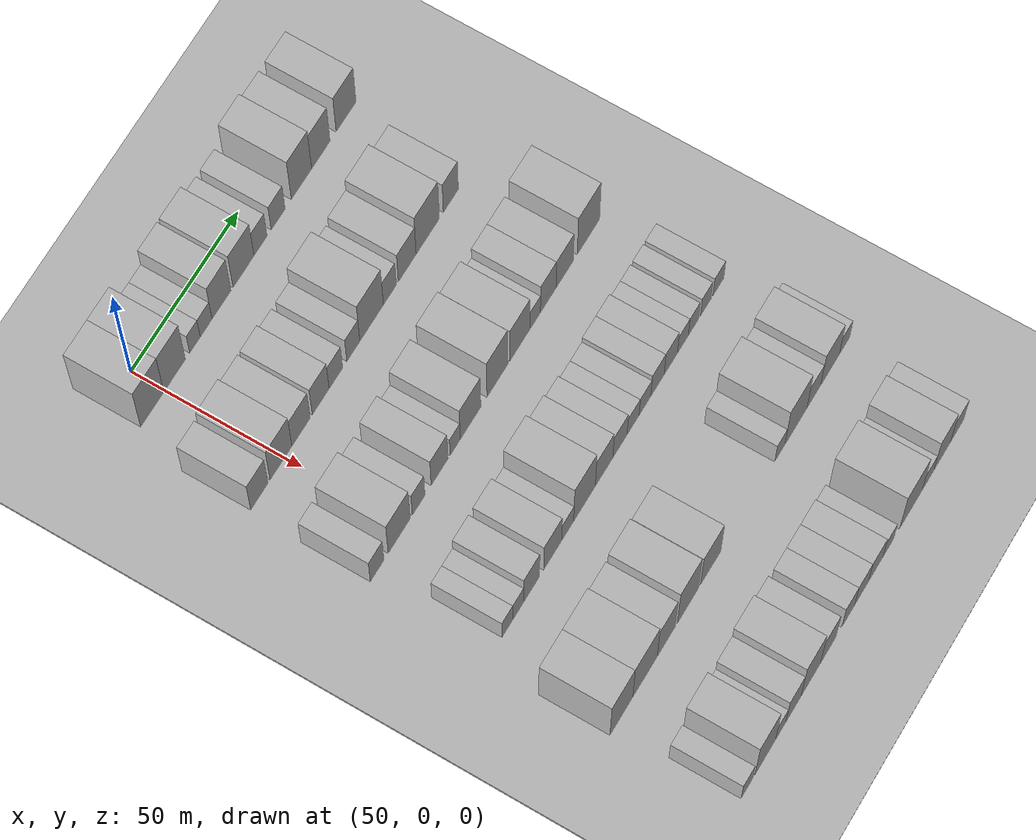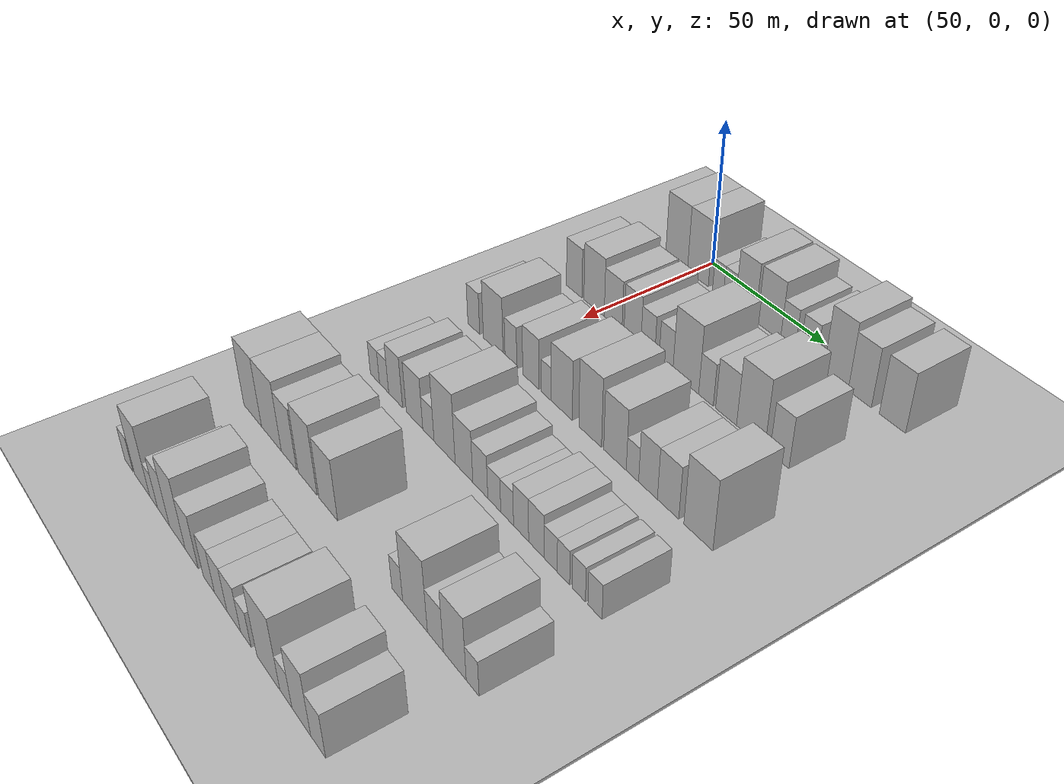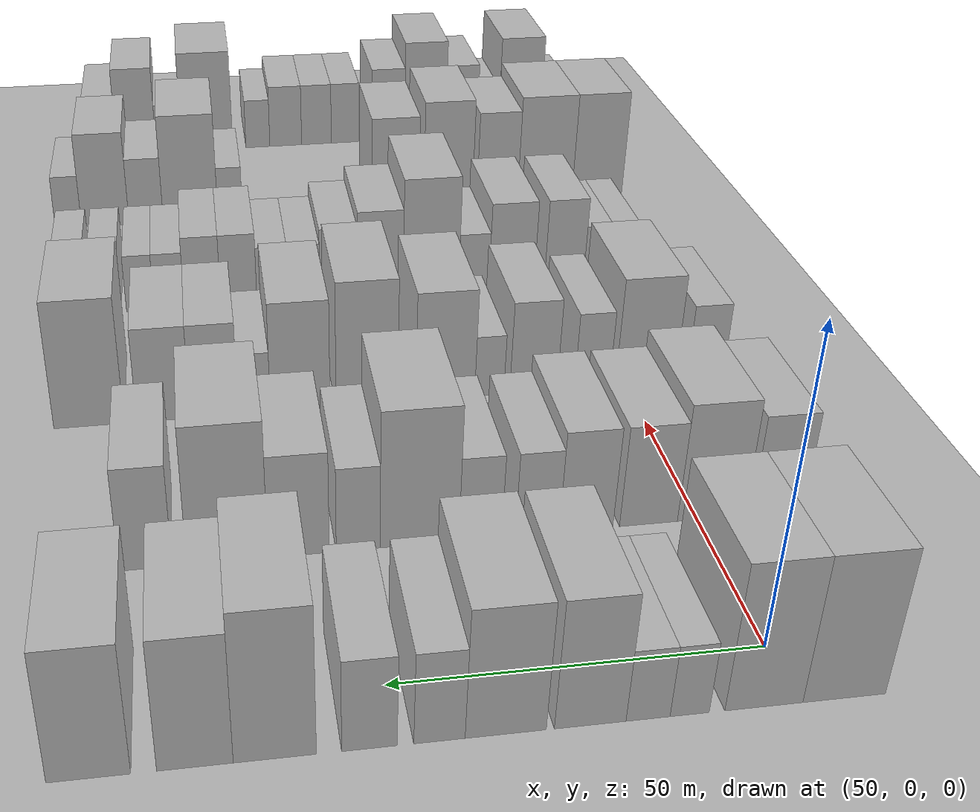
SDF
<sdf version="1.6">
 <world name="default">
  <include><name>ground_plane_1</name><uri>model://HANNAS_ground_plane</uri></include>
  <include>
   <name>ground_plane_2</name>
   <uri>model://HANNAS_ground_plane</uri>
   <pose>100 0 0  0 0 0</pose>
  </include>
  <model name="building_65">
   <static>1</static>
   <pose>50.0000 -6.0727 0 0.000000 0.000000 0.000000</pose>
   <link name="link">
    <pose>0 0 12.00 0 0 0</pose>
    <collision name="collision"><geometry><box><size>20.0000 10.7678 24.0000</size></box></geometry></collision>
    <visual name="visual">
     <cast_shadows>0</cast_shadows>
     <geometry><box><size>20.0000 10.7678 24.0000</size></box></geometry>
     <material>
      <script>
       <uri>model://HANNAS_wall/materials/scripts</uri>
       <uri>model://HANNAS_wall/materials/textures</uri>
       <name>vrc/HANNAS_wall</name>
      </script>
     </material>
    </visual>
   </link>
  </model>
  <model name="building_66">
   <static>1</static>
   <pose>50.0000 4.3286 0 0.000000 0.000000 0.000000</pose>
   <link name="link">
    <pose>0 0 12.00 0 0 0</pose>
    <collision name="collision"><geometry><box><size>20.0000 10.0348 24.0000</size></box></geometry></collision>
    <visual name="visual">
     <cast_shadows>0</cast_shadows>
     <geometry><box><size>20.0000 10.0348 24.0000</size></box></geometry>
     <material>
      <script>
       <uri>model://HANNAS_wall/materials/scripts</uri>
       <uri>model://HANNAS_wall/materials/textures</uri>
       <name>vrc/HANNAS_wall</name>
      </script>
     </material>
    </visual>
   </link>
  </model>
  <model name="building_67">
   <static>1</static>
   <pose>50.0000 13.8316 0 0.000000 0.000000 0.000000</pose>
   <link name="link">
    <pose>0 0 6.00 0 0 0</pose>
    <collision name="collision"><geometry><box><size>20.0000 4.9713 12.0000</size></box></geometry></collision>
    <visual name="visual">
     <cast_shadows>0</cast_shadows>
     <geometry><box><size>20.0000 4.9713 12.0000</size></box></geometry>
     <material>
      <script>
       <uri>model://HANNAS_wall/materials/scripts</uri>
       <uri>model://HANNAS_wall/materials/textures</uri>
       <name>vrc/HANNAS_wall</name>
      </script>
     </material>
    </visual>
   </link>
  </model>
  <model name="building_68">
   <static>1</static>
   <pose>50.0000 19.0926 0 0.000000 0.000000 0.000000</pose>
   <link name="link">
    <pose>0 0 6.00 0 0 0</pose>
    <collision name="collision"><geometry><box><size>20.0000 5.5507 12.0000</size></box></geometry></collision>
    <visual name="visual">
     <cast_shadows>0</cast_shadows>
     <geometry><box><size>20.0000 5.5507 12.0000</size></box></geometry>
     <material>
      <script>
       <uri>model://HANNAS_wall/materials/scripts</uri>
       <uri>model://HANNAS_wall/materials/textures</uri>
       <name>vrc/HANNAS_wall</name>
      </script>
     </material>
    </visual>
   </link>
  </model>
  <model name="building_69">
   <static>1</static>
   <pose>50.0000 26.3345 0 0.000000 0.000000 0.000000</pose>
   <link name="link">
    <pose>0 0 10.50 0 0 0</pose>
    <collision name="collision"><geometry><box><size>20.0000 8.9330 21.0000</size></box></geometry></collision>
    <visual name="visual">
     <cast_shadows>0</cast_shadows>
     <geometry><box><size>20.0000 8.9330 21.0000</size></box></geometry>
     <material>
      <script>
       <uri>model://HANNAS_wall/materials/scripts</uri>
       <uri>model://HANNAS_wall/materials/textures</uri>
       <name>vrc/HANNAS_wall</name>
      </script>
     </material>
    </visual>
   </link>
  </model>
  <model name="building_70">
   <static>1</static>
   <pose>50.0000 36.7902 0 0.000000 0.000000 0.000000</pose>
   <link name="link">
    <pose>0 0 10.50 0 0 0</pose>
    <collision name="collision"><geometry><box><size>20.0000 9.9783 21.0000</size></box></geometry></collision>
    <visual name="visual">
     <cast_shadows>0</cast_shadows>
     <geometry><box><size>20.0000 9.9783 21.0000</size></box></geometry>
     <material>
      <script>
       <uri>model://HANNAS_wall/materials/scripts</uri>
       <uri>model://HANNAS_wall/materials/textures</uri>
       <name>vrc/HANNAS_wall</name>
      </script>
     </material>
    </visual>
   </link>
  </model>
  <model name="building_71">
   <static>1</static>
   <pose>50.0000 44.8989 0 0.000000 0.000000 0.000000</pose>
   <link name="link">
    <pose>0 0 7.50 0 0 0</pose>
    <collision name="collision"><geometry><box><size>20.0000 6.2391 15.0000</size></box></geometry></collision>
    <visual name="visual">
     <cast_shadows>0</cast_shadows>
     <geometry><box><size>20.0000 6.2391 15.0000</size></box></geometry>
     <material>
      <script>
       <uri>model://HANNAS_wall/materials/scripts</uri>
       <uri>model://HANNAS_wall/materials/textures</uri>
       <name>vrc/HANNAS_wall</name>
      </script>
     </material>
    </visual>
   </link>
  </model>
  <model name="building_72">
   <static>1</static>
   <pose>50.0000 53.3557 0 0.000000 0.000000 0.000000</pose>
   <link name="link">
    <pose>0 0 7.50 0 0 0</pose>
    <collision name="collision"><geometry><box><size>20.0000 6.6746 15.0000</size></box></geometry></collision>
    <visual name="visual">
     <cast_shadows>0</cast_shadows>
     <geometry><box><size>20.0000 6.6746 15.0000</size></box></geometry>
     <material>
      <script>
       <uri>model://HANNAS_wall/materials/scripts</uri>
       <uri>model://HANNAS_wall/materials/textures</uri>
       <name>vrc/HANNAS_wall</name>
      </script>
     </material>
    </visual>
   </link>
  </model>
  <model name="building_73">
   <static>1</static>
   <pose>50.0000 64.6066 0 0.000000 0.000000 0.000000</pose>
   <link name="link">
    <pose>0 0 12.00 0 0 0</pose>
    <collision name="collision"><geometry><box><size>20.0000 9.8271 24.0000</size></box></geometry></collision>
    <visual name="visual">
     <cast_shadows>0</cast_shadows>
     <geometry><box><size>20.0000 9.8271 24.0000</size></box></geometry>
     <material>
      <script>
       <uri>model://HANNAS_wall/materials/scripts</uri>
       <uri>model://HANNAS_wall/materials/textures</uri>
       <name>vrc/HANNAS_wall</name>
      </script>
     </material>
    </visual>
   </link>
  </model>
  <model name="building_74">
   <static>1</static>
   <pose>50.0000 73.9853 0 0.000000 0.000000 0.000000</pose>
   <link name="link">
    <pose>0 0 10.50 0 0 0</pose>
    <collision name="collision"><geometry><box><size>20.0000 8.9303 21.0000</size></box></geometry></collision>
    <visual name="visual">
     <cast_shadows>0</cast_shadows>
     <geometry><box><size>20.0000 8.9303 21.0000</size></box></geometry>
     <material>
      <script>
       <uri>model://HANNAS_wall/materials/scripts</uri>
       <uri>model://HANNAS_wall/materials/textures</uri>
       <name>vrc/HANNAS_wall</name>
      </script>
     </material>
    </visual>
   </link>
  </model>
  <model name="building_75">
   <static>1</static>
   <pose>50.0000 86.3121 0 0.000000 0.000000 0.000000</pose>
   <link name="link">
    <pose>0 0 10.50 0 0 0</pose>
    <collision name="collision"><geometry><box><size>20.0000 9.7234 21.0000</size></box></geometry></collision>
    <visual name="visual">
     <cast_shadows>0</cast_shadows>
     <geometry><box><size>20.0000 9.7234 21.0000</size></box></geometry>
     <material>
      <script>
       <uri>model://HANNAS_wall/materials/scripts</uri>
       <uri>model://HANNAS_wall/materials/textures</uri>
       <name>vrc/HANNAS_wall</name>
      </script>
     </material>
    </visual>
   </link>
  </model>
  <model name="building_195">
   <static>1</static>
   <pose>85.0000 -11.9870 0 0.000000 0.000000 0.000000</pose>
   <link name="link">
    <pose>0 0 9.00 0 0 0</pose>
    <collision name="collision"><geometry><box><size>20.0000 8.0708 18.0000</size></box></geometry></collision>
    <visual name="visual">
     <cast_shadows>0</cast_shadows>
     <geometry><box><size>20.0000 8.0708 18.0000</size></box></geometry>
     <material>
      <script>
       <uri>model://HANNAS_wall/materials/scripts</uri>
       <uri>model://HANNAS_wall/materials/textures</uri>
       <name>vrc/HANNAS_wall</name>
      </script>
     </material>
    </visual>
   </link>
  </model>
  <model name="building_196">
   <static>1</static>
   <pose>85.0000 -1.8293 0 0.000000 0.000000 0.000000</pose>
   <link name="link">
    <pose>0 0 10.50 0 0 0</pose>
    <collision name="collision"><geometry><box><size>20.0000 10.2447 21.0000</size></box></geometry></collision>
    <visual name="visual">
     <cast_shadows>0</cast_shadows>
     <geometry><box><size>20.0000 10.2447 21.0000</size></box></geometry>
     <material>
      <script>
       <uri>model://HANNAS_wall/materials/scripts</uri>
       <uri>model://HANNAS_wall/materials/textures</uri>
       <name>vrc/HANNAS_wall</name>
      </script>
     </material>
    </visual>
   </link>
  </model>
  <model name="building_197">
   <static>1</static>
   <pose>85.0000 7.6390 0 0.000000 0.000000 0.000000</pose>
   <link name="link">
    <pose>0 0 9.00 0 0 0</pose>
    <collision name="collision"><geometry><box><size>20.0000 8.6920 18.0000</size></box></geometry></collision>
    <visual name="visual">
     <cast_shadows>0</cast_shadows>
     <geometry><box><size>20.0000 8.6920 18.0000</size></box></geometry>
     <material>
      <script>
       <uri>model://HANNAS_wall/materials/scripts</uri>
       <uri>model://HANNAS_wall/materials/textures</uri>
       <name>vrc/HANNAS_wall</name>
      </script>
     </material>
    </visual>
   </link>
  </model>
  <model name="building_198">
   <static>1</static>
   <pose>85.0000 16.9771 0 0.000000 0.000000 0.000000</pose>
   <link name="link">
    <pose>0 0 9.00 0 0 0</pose>
    <collision name="collision"><geometry><box><size>20.0000 7.9841 18.0000</size></box></geometry></collision>
    <visual name="visual">
     <cast_shadows>0</cast_shadows>
     <geometry><box><size>20.0000 7.9841 18.0000</size></box></geometry>
     <material>
      <script>
       <uri>model://HANNAS_wall/materials/scripts</uri>
       <uri>model://HANNAS_wall/materials/textures</uri>
       <name>vrc/HANNAS_wall</name>
      </script>
     </material>
    </visual>
   </link>
  </model>
  <model name="building_199">
   <static>1</static>
   <pose>85.0000 24.1959 0 0.000000 0.000000 0.000000</pose>
   <link name="link">
    <pose>0 0 7.50 0 0 0</pose>
    <collision name="collision"><geometry><box><size>20.0000 6.4535 15.0000</size></box></geometry></collision>
    <visual name="visual">
     <cast_shadows>0</cast_shadows>
     <geometry><box><size>20.0000 6.4535 15.0000</size></box></geometry>
     <material>
      <script>
       <uri>model://HANNAS_wall/materials/scripts</uri>
       <uri>model://HANNAS_wall/materials/textures</uri>
       <name>vrc/HANNAS_wall</name>
      </script>
     </material>
    </visual>
   </link>
  </model>
  <model name="building_200">
   <static>1</static>
   <pose>85.0000 32.5408 0 0.000000 0.000000 0.000000</pose>
   <link name="link">
    <pose>0 0 7.50 0 0 0</pose>
    <collision name="collision"><geometry><box><size>20.0000 6.2364 15.0000</size></box></geometry></collision>
    <visual name="visual">
     <cast_shadows>0</cast_shadows>
     <geometry><box><size>20.0000 6.2364 15.0000</size></box></geometry>
     <material>
      <script>
       <uri>model://HANNAS_wall/materials/scripts</uri>
       <uri>model://HANNAS_wall/materials/textures</uri>
       <name>vrc/HANNAS_wall</name>
      </script>
     </material>
    </visual>
   </link>
  </model>
  <model name="building_201">
   <static>1</static>
   <pose>85.0000 41.3455 0 0.000000 0.000000 0.000000</pose>
   <link name="link">
    <pose>0 0 12.00 0 0 0</pose>
    <collision name="collision"><geometry><box><size>20.0000 11.3730 24.0000</size></box></geometry></collision>
    <visual name="visual">
     <cast_shadows>0</cast_shadows>
     <geometry><box><size>20.0000 11.3730 24.0000</size></box></geometry>
     <material>
      <script>
       <uri>model://HANNAS_wall/materials/scripts</uri>
       <uri>model://HANNAS_wall/materials/textures</uri>
       <name>vrc/HANNAS_wall</name>
      </script>
     </material>
    </visual>
   </link>
  </model>
  <model name="building_202">
   <static>1</static>
   <pose>85.0000 50.1529 0 0.000000 0.000000 0.000000</pose>
   <link name="link">
    <pose>0 0 7.50 0 0 0</pose>
    <collision name="collision"><geometry><box><size>20.0000 6.2417 15.0000</size></box></geometry></collision>
    <visual name="visual">
     <cast_shadows>0</cast_shadows>
     <geometry><box><size>20.0000 6.2417 15.0000</size></box></geometry>
     <material>
      <script>
       <uri>model://HANNAS_wall/materials/scripts</uri>
       <uri>model://HANNAS_wall/materials/textures</uri>
       <name>vrc/HANNAS_wall</name>
      </script>
     </material>
    </visual>
   </link>
  </model>
  <model name="building_203">
   <static>1</static>
   <pose>85.0000 58.6098 0 0.000000 0.000000 0.000000</pose>
   <link name="link">
    <pose>0 0 9.00 0 0 0</pose>
    <collision name="collision"><geometry><box><size>20.0000 8.6721 18.0000</size></box></geometry></collision>
    <visual name="visual">
     <cast_shadows>0</cast_shadows>
     <geometry><box><size>20.0000 8.6721 18.0000</size></box></geometry>
     <material>
      <script>
       <uri>model://HANNAS_wall/materials/scripts</uri>
       <uri>model://HANNAS_wall/materials/textures</uri>
       <name>vrc/HANNAS_wall</name>
      </script>
     </material>
    </visual>
   </link>
  </model>
  <model name="building_204">
   <static>1</static>
   <pose>85.0000 68.6152 0 0.000000 0.000000 0.000000</pose>
   <link name="link">
    <pose>0 0 12.00 0 0 0</pose>
    <collision name="collision"><geometry><box><size>20.0000 11.3387 24.0000</size></box></geometry></collision>
    <visual name="visual">
     <cast_shadows>0</cast_shadows>
     <geometry><box><size>20.0000 11.3387 24.0000</size></box></geometry>
     <material>
      <script>
       <uri>model://HANNAS_wall/materials/scripts</uri>
       <uri>model://HANNAS_wall/materials/textures</uri>
       <name>vrc/HANNAS_wall</name>
      </script>
     </material>
    </visual>
   </link>
  </model>
  <model name="building_205">
   <static>1</static>
   <pose>85.0000 79.9646 0 0.000000 0.000000 0.000000</pose>
   <link name="link">
    <pose>0 0 9.00 0 0 0</pose>
    <collision name="collision"><geometry><box><size>20.0000 7.3601 18.0000</size></box></geometry></collision>
    <visual name="visual">
     <cast_shadows>0</cast_shadows>
     <geometry><box><size>20.0000 7.3601 18.0000</size></box></geometry>
     <material>
      <script>
       <uri>model://HANNAS_wall/materials/scripts</uri>
       <uri>model://HANNAS_wall/materials/textures</uri>
       <name>vrc/HANNAS_wall</name>
      </script>
     </material>
    </visual>
   </link>
  </model>
  <model name="building_298">
   <static>1</static>
   <pose>120.0000 -13.5991 0 0.000000 0.000000 0.000000</pose>
   <link name="link">
    <pose>0 0 7.50 0 0 0</pose>
    <collision name="collision"><geometry><box><size>20.0000 6.4340 15.0000</size></box></geometry></collision>
    <visual name="visual">
     <cast_shadows>0</cast_shadows>
     <geometry><box><size>20.0000 6.4340 15.0000</size></box></geometry>
     <material>
      <script>
       <uri>model://HANNAS_wall/materials/scripts</uri>
       <uri>model://HANNAS_wall/materials/textures</uri>
       <name>vrc/HANNAS_wall</name>
      </script>
     </material>
    </visual>
   </link>
  </model>
  <model name="building_299">
   <static>1</static>
   <pose>120.0000 -3.1627 0 0.000000 0.000000 0.000000</pose>
   <link name="link">
    <pose>0 0 10.50 0 0 0</pose>
    <collision name="collision"><geometry><box><size>20.0000 10.4388 21.0000</size></box></geometry></collision>
    <visual name="visual">
     <cast_shadows>0</cast_shadows>
     <geometry><box><size>20.0000 10.4388 21.0000</size></box></geometry>
     <material>
      <script>
       <uri>model://HANNAS_wall/materials/scripts</uri>
       <uri>model://HANNAS_wall/materials/textures</uri>
       <name>vrc/HANNAS_wall</name>
      </script>
     </material>
    </visual>
   </link>
  </model>
  <model name="building_300">
   <static>1</static>
   <pose>120.0000 6.0774 0 0.000000 0.000000 0.000000</pose>
   <link name="link">
    <pose>0 0 7.50 0 0 0</pose>
    <collision name="collision"><geometry><box><size>20.0000 6.0415 15.0000</size></box></geometry></collision>
    <visual name="visual">
     <cast_shadows>0</cast_shadows>
     <geometry><box><size>20.0000 6.0415 15.0000</size></box></geometry>
     <material>
      <script>
       <uri>model://HANNAS_wall/materials/scripts</uri>
       <uri>model://HANNAS_wall/materials/textures</uri>
       <name>vrc/HANNAS_wall</name>
      </script>
     </material>
    </visual>
   </link>
  </model>
  <model name="building_301">
   <static>1</static>
   <pose>120.0000 16.1306 0 0.000000 0.000000 0.000000</pose>
   <link name="link">
    <pose>0 0 9.00 0 0 0</pose>
    <collision name="collision"><geometry><box><size>20.0000 8.0649 18.0000</size></box></geometry></collision>
    <visual name="visual">
     <cast_shadows>0</cast_shadows>
     <geometry><box><size>20.0000 8.0649 18.0000</size></box></geometry>
     <material>
      <script>
       <uri>model://HANNAS_wall/materials/scripts</uri>
       <uri>model://HANNAS_wall/materials/textures</uri>
       <name>vrc/HANNAS_wall</name>
      </script>
     </material>
    </visual>
   </link>
  </model>
  <model name="building_302">
   <static>1</static>
   <pose>120.0000 23.6280 0 0.000000 0.000000 0.000000</pose>
   <link name="link">
    <pose>0 0 6.00 0 0 0</pose>
    <collision name="collision"><geometry><box><size>20.0000 4.9298 12.0000</size></box></geometry></collision>
    <visual name="visual">
     <cast_shadows>0</cast_shadows>
     <geometry><box><size>20.0000 4.9298 12.0000</size></box></geometry>
     <material>
      <script>
       <uri>model://HANNAS_wall/materials/scripts</uri>
       <uri>model://HANNAS_wall/materials/textures</uri>
       <name>vrc/HANNAS_wall</name>
      </script>
     </material>
    </visual>
   </link>
  </model>
  <model name="building_303">
   <static>1</static>
   <pose>120.0000 31.0612 0 0.000000 0.000000 0.000000</pose>
   <link name="link">
    <pose>0 0 10.50 0 0 0</pose>
    <collision name="collision"><geometry><box><size>20.0000 9.9366 21.0000</size></box></geometry></collision>
    <visual name="visual">
     <cast_shadows>0</cast_shadows>
     <geometry><box><size>20.0000 9.9366 21.0000</size></box></geometry>
     <material>
      <script>
       <uri>model://HANNAS_wall/materials/scripts</uri>
       <uri>model://HANNAS_wall/materials/textures</uri>
       <name>vrc/HANNAS_wall</name>
      </script>
     </material>
    </visual>
   </link>
  </model>
  <model name="building_304">
   <static>1</static>
   <pose>120.0000 44.1324 0 0.000000 0.000000 0.000000</pose>
   <link name="link">
    <pose>0 0 12.00 0 0 0</pose>
    <collision name="collision"><geometry><box><size>20.0000 10.2057 24.0000</size></box></geometry></collision>
    <visual name="visual">
     <cast_shadows>0</cast_shadows>
     <geometry><box><size>20.0000 10.2057 24.0000</size></box></geometry>
     <material>
      <script>
       <uri>model://HANNAS_wall/materials/scripts</uri>
       <uri>model://HANNAS_wall/materials/textures</uri>
       <name>vrc/HANNAS_wall</name>
      </script>
     </material>
    </visual>
   </link>
  </model>
  <model name="building_305">
   <static>1</static>
   <pose>120.0000 55.1293 0 0.000000 0.000000 0.000000</pose>
   <link name="link">
    <pose>0 0 10.50 0 0 0</pose>
    <collision name="collision"><geometry><box><size>20.0000 9.7881 21.0000</size></box></geometry></collision>
    <visual name="visual">
     <cast_shadows>0</cast_shadows>
     <geometry><box><size>20.0000 9.7881 21.0000</size></box></geometry>
     <material>
      <script>
       <uri>model://HANNAS_wall/materials/scripts</uri>
       <uri>model://HANNAS_wall/materials/textures</uri>
       <name>vrc/HANNAS_wall</name>
      </script>
     </material>
    </visual>
   </link>
  </model>
  <model name="building_306">
   <static>1</static>
   <pose>120.0000 62.6433 0 0.000000 0.000000 0.000000</pose>
   <link name="link">
    <pose>0 0 6.00 0 0 0</pose>
    <collision name="collision"><geometry><box><size>20.0000 5.2399 12.0000</size></box></geometry></collision>
    <visual name="visual">
     <cast_shadows>0</cast_shadows>
     <geometry><box><size>20.0000 5.2399 12.0000</size></box></geometry>
     <material>
      <script>
       <uri>model://HANNAS_wall/materials/scripts</uri>
       <uri>model://HANNAS_wall/materials/textures</uri>
       <name>vrc/HANNAS_wall</name>
      </script>
     </material>
    </visual>
   </link>
  </model>
  <model name="building_307">
   <static>1</static>
   <pose>120.0000 69.1378 0 0.000000 0.000000 0.000000</pose>
   <link name="link">
    <pose>0 0 9.00 0 0 0</pose>
    <collision name="collision"><geometry><box><size>20.0000 7.7492 18.0000</size></box></geometry></collision>
    <visual name="visual">
     <cast_shadows>0</cast_shadows>
     <geometry><box><size>20.0000 7.7492 18.0000</size></box></geometry>
     <material>
      <script>
       <uri>model://HANNAS_wall/materials/scripts</uri>
       <uri>model://HANNAS_wall/materials/textures</uri>
       <name>vrc/HANNAS_wall</name>
      </script>
     </material>
    </visual>
   </link>
  </model>
  <model name="building_308">
   <static>1</static>
   <pose>120.0000 77.2965 0 0.000000 0.000000 0.000000</pose>
   <link name="link">
    <pose>0 0 9.00 0 0 0</pose>
    <collision name="collision"><geometry><box><size>20.0000 8.5682 18.0000</size></box></geometry></collision>
    <visual name="visual">
     <cast_shadows>0</cast_shadows>
     <geometry><box><size>20.0000 8.5682 18.0000</size></box></geometry>
     <material>
      <script>
       <uri>model://HANNAS_wall/materials/scripts</uri>
       <uri>model://HANNAS_wall/materials/textures</uri>
       <name>vrc/HANNAS_wall</name>
      </script>
     </material>
    </visual>
   </link>
  </model>
  <model name="building_309">
   <static>1</static>
   <pose>120.0000 89.1655 0 0.000000 0.000000 0.000000</pose>
   <link name="link">
    <pose>0 0 12.00 0 0 0</pose>
    <collision name="collision"><geometry><box><size>20.0000 11.1696 24.0000</size></box></geometry></collision>
    <visual name="visual">
     <cast_shadows>0</cast_shadows>
     <geometry><box><size>20.0000 11.1696 24.0000</size></box></geometry>
     <material>
      <script>
       <uri>model://HANNAS_wall/materials/scripts</uri>
       <uri>model://HANNAS_wall/materials/textures</uri>
       <name>vrc/HANNAS_wall</name>
      </script>
     </material>
    </visual>
   </link>
  </model>
  <model name="building_424">
   <static>1</static>
   <pose>155.0000 -10.0343 0 0.000000 0.000000 0.000000</pose>
   <link name="link">
    <pose>0 0 6.00 0 0 0</pose>
    <collision name="collision"><geometry><box><size>20.0000 5.2071 12.0000</size></box></geometry></collision>
    <visual name="visual">
     <cast_shadows>0</cast_shadows>
     <geometry><box><size>20.0000 5.2071 12.0000</size></box></geometry>
     <material>
      <script>
       <uri>model://HANNAS_wall/materials/scripts</uri>
       <uri>model://HANNAS_wall/materials/textures</uri>
       <name>vrc/HANNAS_wall</name>
      </script>
     </material>
    </visual>
   </link>
  </model>
  <model name="building_425">
   <static>1</static>
   <pose>155.0000 -4.8627 0 0.000000 0.000000 0.000000</pose>
   <link name="link">
    <pose>0 0 6.00 0 0 0</pose>
    <collision name="collision"><geometry><box><size>20.0000 5.1360 12.0000</size></box></geometry></collision>
    <visual name="visual">
     <cast_shadows>0</cast_shadows>
     <geometry><box><size>20.0000 5.1360 12.0000</size></box></geometry>
     <material>
      <script>
       <uri>model://HANNAS_wall/materials/scripts</uri>
       <uri>model://HANNAS_wall/materials/textures</uri>
       <name>vrc/HANNAS_wall</name>
      </script>
     </material>
    </visual>
   </link>
  </model>
  <model name="building_426">
   <static>1</static>
   <pose>155.0000 1.5224 0 0.000000 0.000000 0.000000</pose>
   <link name="link">
    <pose>0 0 9.00 0 0 0</pose>
    <collision name="collision"><geometry><box><size>20.0000 7.6342 18.0000</size></box></geometry></collision>
    <visual name="visual">
     <cast_shadows>0</cast_shadows>
     <geometry><box><size>20.0000 7.6342 18.0000</size></box></geometry>
     <material>
      <script>
       <uri>model://HANNAS_wall/materials/scripts</uri>
       <uri>model://HANNAS_wall/materials/textures</uri>
       <name>vrc/HANNAS_wall</name>
      </script>
     </material>
    </visual>
   </link>
  </model>
  <model name="building_427">
   <static>1</static>
   <pose>155.0000 11.7195 0 0.000000 0.000000 0.000000</pose>
   <link name="link">
    <pose>0 0 9.00 0 0 0</pose>
    <collision name="collision"><geometry><box><size>20.0000 8.7600 18.0000</size></box></geometry></collision>
    <visual name="visual">
     <cast_shadows>0</cast_shadows>
     <geometry><box><size>20.0000 8.7600 18.0000</size></box></geometry>
     <material>
      <script>
       <uri>model://HANNAS_wall/materials/scripts</uri>
       <uri>model://HANNAS_wall/materials/textures</uri>
       <name>vrc/HANNAS_wall</name>
      </script>
     </material>
    </visual>
   </link>
  </model>
  <model name="building_428">
   <static>1</static>
   <pose>155.0000 19.0190 0 0.000000 0.000000 0.000000</pose>
   <link name="link">
    <pose>0 0 6.00 0 0 0</pose>
    <collision name="collision"><geometry><box><size>20.0000 5.8390 12.0000</size></box></geometry></collision>
    <visual name="visual">
     <cast_shadows>0</cast_shadows>
     <geometry><box><size>20.0000 5.8390 12.0000</size></box></geometry>
     <material>
      <script>
       <uri>model://HANNAS_wall/materials/scripts</uri>
       <uri>model://HANNAS_wall/materials/textures</uri>
       <name>vrc/HANNAS_wall</name>
      </script>
     </material>
    </visual>
   </link>
  </model>
  <model name="building_429">
   <static>1</static>
   <pose>155.0000 27.2425 0 0.000000 0.000000 0.000000</pose>
   <link name="link">
    <pose>0 0 12.00 0 0 0</pose>
    <collision name="collision"><geometry><box><size>20.0000 10.6080 24.0000</size></box></geometry></collision>
    <visual name="visual">
     <cast_shadows>0</cast_shadows>
     <geometry><box><size>20.0000 10.6080 24.0000</size></box></geometry>
     <material>
      <script>
       <uri>model://HANNAS_wall/materials/scripts</uri>
       <uri>model://HANNAS_wall/materials/textures</uri>
       <name>vrc/HANNAS_wall</name>
      </script>
     </material>
    </visual>
   </link>
  </model>
  <model name="building_430">
   <static>1</static>
   <pose>155.0000 36.8437 0 0.000000 0.000000 0.000000</pose>
   <link name="link">
    <pose>0 0 9.00 0 0 0</pose>
    <collision name="collision"><geometry><box><size>20.0000 8.5944 18.0000</size></box></geometry></collision>
    <visual name="visual">
     <cast_shadows>0</cast_shadows>
     <geometry><box><size>20.0000 8.5944 18.0000</size></box></geometry>
     <material>
      <script>
       <uri>model://HANNAS_wall/materials/scripts</uri>
       <uri>model://HANNAS_wall/materials/textures</uri>
       <name>vrc/HANNAS_wall</name>
      </script>
     </material>
    </visual>
   </link>
  </model>
  <model name="building_431">
   <static>1</static>
   <pose>155.0000 44.6771 0 0.000000 0.000000 0.000000</pose>
   <link name="link">
    <pose>0 0 7.50 0 0 0</pose>
    <collision name="collision"><geometry><box><size>20.0000 7.0725 15.0000</size></box></geometry></collision>
    <visual name="visual">
     <cast_shadows>0</cast_shadows>
     <geometry><box><size>20.0000 7.0725 15.0000</size></box></geometry>
     <material>
      <script>
       <uri>model://HANNAS_wall/materials/scripts</uri>
       <uri>model://HANNAS_wall/materials/textures</uri>
       <name>vrc/HANNAS_wall</name>
      </script>
     </material>
    </visual>
   </link>
  </model>
  <model name="building_432">
   <static>1</static>
   <pose>155.0000 51.1963 0 0.000000 0.000000 0.000000</pose>
   <link name="link">
    <pose>0 0 6.00 0 0 0</pose>
    <collision name="collision"><geometry><box><size>20.0000 5.9659 12.0000</size></box></geometry></collision>
    <visual name="visual">
     <cast_shadows>0</cast_shadows>
     <geometry><box><size>20.0000 5.9659 12.0000</size></box></geometry>
     <material>
      <script>
       <uri>model://HANNAS_wall/materials/scripts</uri>
       <uri>model://HANNAS_wall/materials/textures</uri>
       <name>vrc/HANNAS_wall</name>
      </script>
     </material>
    </visual>
   </link>
  </model>
  <model name="building_433">
   <static>1</static>
   <pose>155.0000 57.0636 0 0.000000 0.000000 0.000000</pose>
   <link name="link">
    <pose>0 0 6.00 0 0 0</pose>
    <collision name="collision"><geometry><box><size>20.0000 5.7688 12.0000</size></box></geometry></collision>
    <visual name="visual">
     <cast_shadows>0</cast_shadows>
     <geometry><box><size>20.0000 5.7688 12.0000</size></box></geometry>
     <material>
      <script>
       <uri>model://HANNAS_wall/materials/scripts</uri>
       <uri>model://HANNAS_wall/materials/textures</uri>
       <name>vrc/HANNAS_wall</name>
      </script>
     </material>
    </visual>
   </link>
  </model>
  <model name="building_434">
   <static>1</static>
   <pose>155.0000 63.2870 0 0.000000 0.000000 0.000000</pose>
   <link name="link">
    <pose>0 0 7.50 0 0 0</pose>
    <collision name="collision"><geometry><box><size>20.0000 6.6780 15.0000</size></box></geometry></collision>
    <visual name="visual">
     <cast_shadows>0</cast_shadows>
     <geometry><box><size>20.0000 6.6780 15.0000</size></box></geometry>
     <material>
      <script>
       <uri>model://HANNAS_wall/materials/scripts</uri>
       <uri>model://HANNAS_wall/materials/textures</uri>
       <name>vrc/HANNAS_wall</name>
      </script>
     </material>
    </visual>
   </link>
  </model>
  <model name="building_435">
   <static>1</static>
   <pose>155.0000 69.9739 0 0.000000 0.000000 0.000000</pose>
   <link name="link">
    <pose>0 0 7.50 0 0 0</pose>
    <collision name="collision"><geometry><box><size>20.0000 6.6958 15.0000</size></box></geometry></collision>
    <visual name="visual">
     <cast_shadows>0</cast_shadows>
     <geometry><box><size>20.0000 6.6958 15.0000</size></box></geometry>
     <material>
      <script>
       <uri>model://HANNAS_wall/materials/scripts</uri>
       <uri>model://HANNAS_wall/materials/textures</uri>
       <name>vrc/HANNAS_wall</name>
      </script>
     </material>
    </visual>
   </link>
  </model>
  <model name="building_436">
   <static>1</static>
   <pose>155.0000 76.0796 0 0.000000 0.000000 0.000000</pose>
   <link name="link">
    <pose>0 0 6.00 0 0 0</pose>
    <collision name="collision"><geometry><box><size>20.0000 5.5156 12.0000</size></box></geometry></collision>
    <visual name="visual">
     <cast_shadows>0</cast_shadows>
     <geometry><box><size>20.0000 5.5156 12.0000</size></box></geometry>
     <material>
      <script>
       <uri>model://HANNAS_wall/materials/scripts</uri>
       <uri>model://HANNAS_wall/materials/textures</uri>
       <name>vrc/HANNAS_wall</name>
      </script>
     </material>
    </visual>
   </link>
  </model>
  <model name="building_437">
   <static>1</static>
   <pose>155.0000 81.3612 0 0.000000 0.000000 0.000000</pose>
   <link name="link">
    <pose>0 0 6.00 0 0 0</pose>
    <collision name="collision"><geometry><box><size>20.0000 5.0476 12.0000</size></box></geometry></collision>
    <visual name="visual">
     <cast_shadows>0</cast_shadows>
     <geometry><box><size>20.0000 5.0476 12.0000</size></box></geometry>
     <material>
      <script>
       <uri>model://HANNAS_wall/materials/scripts</uri>
       <uri>model://HANNAS_wall/materials/textures</uri>
       <name>vrc/HANNAS_wall</name>
      </script>
     </material>
    </visual>
   </link>
  </model>
  <model name="building_438">
   <static>1</static>
   <pose>155.0000 87.5659 0 0.000000 0.000000 0.000000</pose>
   <link name="link">
    <pose>0 0 6.00 0 0 0</pose>
    <collision name="collision"><geometry><box><size>20.0000 5.3619 12.0000</size></box></geometry></collision>
    <visual name="visual">
     <cast_shadows>0</cast_shadows>
     <geometry><box><size>20.0000 5.3619 12.0000</size></box></geometry>
     <material>
      <script>
       <uri>model://HANNAS_wall/materials/scripts</uri>
       <uri>model://HANNAS_wall/materials/textures</uri>
       <name>vrc/HANNAS_wall</name>
      </script>
     </material>
    </visual>
   </link>
  </model>
  <model name="building_439">
   <static>1</static>
   <pose>155.0000 94.0089 0 0.000000 0.000000 0.000000</pose>
   <link name="link">
    <pose>0 0 6.00 0 0 0</pose>
    <collision name="collision"><geometry><box><size>20.0000 5.5240 12.0000</size></box></geometry></collision>
    <visual name="visual">
     <cast_shadows>0</cast_shadows>
     <geometry><box><size>20.0000 5.5240 12.0000</size></box></geometry>
     <material>
      <script>
       <uri>model://HANNAS_wall/materials/scripts</uri>
       <uri>model://HANNAS_wall/materials/textures</uri>
       <name>vrc/HANNAS_wall</name>
      </script>
     </material>
    </visual>
   </link>
  </model>
  <model name="building_549">
   <static>1</static>
   <pose>190.0000 -15.0713 0 0.000000 0.000000 0.000000</pose>
   <link name="link">
    <pose>0 0 12.00 0 0 0</pose>
    <collision name="collision"><geometry><box><size>20.0000 10.9814 24.0000</size></box></geometry></collision>
    <visual name="visual">
     <cast_shadows>0</cast_shadows>
     <geometry><box><size>20.0000 10.9814 24.0000</size></box></geometry>
     <material>
      <script>
       <uri>model://HANNAS_wall/materials/scripts</uri>
       <uri>model://HANNAS_wall/materials/textures</uri>
       <name>vrc/HANNAS_wall</name>
      </script>
     </material>
    </visual>
   </link>
  </model>
  <model name="building_550">
   <static>1</static>
   <pose>190.0000 -3.6329 0 0.000000 0.000000 0.000000</pose>
   <link name="link">
    <pose>0 0 12.00 0 0 0</pose>
    <collision name="collision"><geometry><box><size>20.0000 11.8955 24.0000</size></box></geometry></collision>
    <visual name="visual">
     <cast_shadows>0</cast_shadows>
     <geometry><box><size>20.0000 11.8955 24.0000</size></box></geometry>
     <material>
      <script>
       <uri>model://HANNAS_wall/materials/scripts</uri>
       <uri>model://HANNAS_wall/materials/textures</uri>
       <name>vrc/HANNAS_wall</name>
      </script>
     </material>
    </visual>
   </link>
  </model>
  <model name="building_551">
   <static>1</static>
   <pose>190.0000 6.7150 0 0.000000 0.000000 0.000000</pose>
   <link name="link">
    <pose>0 0 10.50 0 0 0</pose>
    <collision name="collision"><geometry><box><size>20.0000 8.8005 21.0000</size></box></geometry></collision>
    <visual name="visual">
     <cast_shadows>0</cast_shadows>
     <geometry><box><size>20.0000 8.8005 21.0000</size></box></geometry>
     <material>
      <script>
       <uri>model://HANNAS_wall/materials/scripts</uri>
       <uri>model://HANNAS_wall/materials/textures</uri>
       <name>vrc/HANNAS_wall</name>
      </script>
     </material>
    </visual>
   </link>
  </model>
  <model name="building_552">
   <static>1</static>
   <pose>190.0000 17.3384 0 0.000000 0.000000 0.000000</pose>
   <link name="link">
    <pose>0 0 12.00 0 0 0</pose>
    <collision name="collision"><geometry><box><size>20.0000 10.4462 24.0000</size></box></geometry></collision>
    <visual name="visual">
     <cast_shadows>0</cast_shadows>
     <geometry><box><size>20.0000 10.4462 24.0000</size></box></geometry>
     <material>
      <script>
       <uri>model://HANNAS_wall/materials/scripts</uri>
       <uri>model://HANNAS_wall/materials/textures</uri>
       <name>vrc/HANNAS_wall</name>
      </script>
     </material>
    </visual>
   </link>
  </model>
  <model name="building_553">
   <static>1</static>
   <pose>190.0000 28.5803 0 0.000000 0.000000 0.000000</pose>
   <link name="link">
    <pose>0 0 10.50 0 0 0</pose>
    <collision name="collision"><geometry><box><size>20.0000 10.0376 21.0000</size></box></geometry></collision>
    <visual name="visual">
     <cast_shadows>0</cast_shadows>
     <geometry><box><size>20.0000 10.0376 21.0000</size></box></geometry>
     <material>
      <script>
       <uri>model://HANNAS_wall/materials/scripts</uri>
       <uri>model://HANNAS_wall/materials/textures</uri>
       <name>vrc/HANNAS_wall</name>
      </script>
     </material>
    </visual>
   </link>
  </model>
  <model name="building_554">
   <static>1</static>
   <pose>190.0000 63.2307 0 0.000000 0.000000 0.000000</pose>
   <link name="link">
    <pose>0 0 6.00 0 0 0</pose>
    <collision name="collision"><geometry><box><size>20.0000 5.0878 12.0000</size></box></geometry></collision>
    <visual name="visual">
     <cast_shadows>0</cast_shadows>
     <geometry><box><size>20.0000 5.0878 12.0000</size></box></geometry>
     <material>
      <script>
       <uri>model://HANNAS_wall/materials/scripts</uri>
       <uri>model://HANNAS_wall/materials/textures</uri>
       <name>vrc/HANNAS_wall</name>
      </script>
     </material>
    </visual>
   </link>
  </model>
  <model name="building_555">
   <static>1</static>
   <pose>190.0000 71.3902 0 0.000000 0.000000 0.000000</pose>
   <link name="link">
    <pose>0 0 12.00 0 0 0</pose>
    <collision name="collision"><geometry><box><size>20.0000 11.2311 24.0000</size></box></geometry></collision>
    <visual name="visual">
     <cast_shadows>0</cast_shadows>
     <geometry><box><size>20.0000 11.2311 24.0000</size></box></geometry>
     <material>
      <script>
       <uri>model://HANNAS_wall/materials/scripts</uri>
       <uri>model://HANNAS_wall/materials/textures</uri>
       <name>vrc/HANNAS_wall</name>
      </script>
     </material>
    </visual>
   </link>
  </model>
  <model name="building_556">
   <static>1</static>
   <pose>190.0000 80.4964 0 0.000000 0.000000 0.000000</pose>
   <link name="link">
    <pose>0 0 7.50 0 0 0</pose>
    <collision name="collision"><geometry><box><size>20.0000 6.9814 15.0000</size></box></geometry></collision>
    <visual name="visual">
     <cast_shadows>0</cast_shadows>
     <geometry><box><size>20.0000 6.9814 15.0000</size></box></geometry>
     <material>
      <script>
       <uri>model://HANNAS_wall/materials/scripts</uri>
       <uri>model://HANNAS_wall/materials/textures</uri>
       <name>vrc/HANNAS_wall</name>
      </script>
     </material>
    </visual>
   </link>
  </model>
  <model name="building_557">
   <static>1</static>
   <pose>190.0000 88.8090 0 0.000000 0.000000 0.000000</pose>
   <link name="link">
    <pose>0 0 10.50 0 0 0</pose>
    <collision name="collision"><geometry><box><size>20.0000 9.6438 21.0000</size></box></geometry></collision>
    <visual name="visual">
     <cast_shadows>0</cast_shadows>
     <geometry><box><size>20.0000 9.6438 21.0000</size></box></geometry>
     <material>
      <script>
       <uri>model://HANNAS_wall/materials/scripts</uri>
       <uri>model://HANNAS_wall/materials/textures</uri>
       <name>vrc/HANNAS_wall</name>
      </script>
     </material>
    </visual>
   </link>
  </model>
  <model name="building_558">
   <static>1</static>
   <pose>190.0000 96.2840 0 0.000000 0.000000 0.000000</pose>
   <link name="link">
    <pose>0 0 6.00 0 0 0</pose>
    <collision name="collision"><geometry><box><size>20.0000 5.3062 12.0000</size></box></geometry></collision>
    <visual name="visual">
     <cast_shadows>0</cast_shadows>
     <geometry><box><size>20.0000 5.3062 12.0000</size></box></geometry>
     <material>
      <script>
       <uri>model://HANNAS_wall/materials/scripts</uri>
       <uri>model://HANNAS_wall/materials/textures</uri>
       <name>vrc/HANNAS_wall</name>
      </script>
     </material>
    </visual>
   </link>
  </model>
  <model name="building_673">
   <static>1</static>
   <pose>225.0000 -15.2605 0 0.000000 0.000000 0.000000</pose>
   <link name="link">
    <pose>0 0 6.00 0 0 0</pose>
    <collision name="collision"><geometry><box><size>20.0000 5.7321 12.0000</size></box></geometry></collision>
    <visual name="visual">
     <cast_shadows>0</cast_shadows>
     <geometry><box><size>20.0000 5.7321 12.0000</size></box></geometry>
     <material>
      <script>
       <uri>model://HANNAS_wall/materials/scripts</uri>
       <uri>model://HANNAS_wall/materials/textures</uri>
       <name>vrc/HANNAS_wall</name>
      </script>
     </material>
    </visual>
   </link>
  </model>
  <model name="building_674">
   <static>1</static>
   <pose>225.0000 -6.3351 0 0.000000 0.000000 0.000000</pose>
   <link name="link">
    <pose>0 0 12.00 0 0 0</pose>
    <collision name="collision"><geometry><box><size>20.0000 10.1186 24.0000</size></box></geometry></collision>
    <visual name="visual">
     <cast_shadows>0</cast_shadows>
     <geometry><box><size>20.0000 10.1186 24.0000</size></box></geometry>
     <material>
      <script>
       <uri>model://HANNAS_wall/materials/scripts</uri>
       <uri>model://HANNAS_wall/materials/textures</uri>
       <name>vrc/HANNAS_wall</name>
      </script>
     </material>
    </visual>
   </link>
  </model>
  <model name="building_675">
   <static>1</static>
   <pose>225.0000 1.2362 0 0.000000 0.000000 0.000000</pose>
   <link name="link">
    <pose>0 0 6.00 0 0 0</pose>
    <collision name="collision"><geometry><box><size>20.0000 5.0240 12.0000</size></box></geometry></collision>
    <visual name="visual">
     <cast_shadows>0</cast_shadows>
     <geometry><box><size>20.0000 5.0240 12.0000</size></box></geometry>
     <material>
      <script>
       <uri>model://HANNAS_wall/materials/scripts</uri>
       <uri>model://HANNAS_wall/materials/textures</uri>
       <name>vrc/HANNAS_wall</name>
      </script>
     </material>
    </visual>
   </link>
  </model>
  <model name="building_676">
   <static>1</static>
   <pose>225.0000 7.5060 0 0.000000 0.000000 0.000000</pose>
   <link name="link">
    <pose>0 0 9.00 0 0 0</pose>
    <collision name="collision"><geometry><box><size>20.0000 7.5156 18.0000</size></box></geometry></collision>
    <visual name="visual">
     <cast_shadows>0</cast_shadows>
     <geometry><box><size>20.0000 7.5156 18.0000</size></box></geometry>
     <material>
      <script>
       <uri>model://HANNAS_wall/materials/scripts</uri>
       <uri>model://HANNAS_wall/materials/textures</uri>
       <name>vrc/HANNAS_wall</name>
      </script>
     </material>
    </visual>
   </link>
  </model>
  <model name="building_677">
   <static>1</static>
   <pose>225.0000 16.1436 0 0.000000 0.000000 0.000000</pose>
   <link name="link">
    <pose>0 0 12.00 0 0 0</pose>
    <collision name="collision"><geometry><box><size>20.0000 9.7597 24.0000</size></box></geometry></collision>
    <visual name="visual">
     <cast_shadows>0</cast_shadows>
     <geometry><box><size>20.0000 9.7597 24.0000</size></box></geometry>
     <material>
      <script>
       <uri>model://HANNAS_wall/materials/scripts</uri>
       <uri>model://HANNAS_wall/materials/textures</uri>
       <name>vrc/HANNAS_wall</name>
      </script>
     </material>
    </visual>
   </link>
  </model>
  <model name="building_678">
   <static>1</static>
   <pose>225.0000 24.8719 0 0.000000 0.000000 0.000000</pose>
   <link name="link">
    <pose>0 0 9.00 0 0 0</pose>
    <collision name="collision"><geometry><box><size>20.0000 7.6969 18.0000</size></box></geometry></collision>
    <visual name="visual">
     <cast_shadows>0</cast_shadows>
     <geometry><box><size>20.0000 7.6969 18.0000</size></box></geometry>
     <material>
      <script>
       <uri>model://HANNAS_wall/materials/scripts</uri>
       <uri>model://HANNAS_wall/materials/textures</uri>
       <name>vrc/HANNAS_wall</name>
      </script>
     </material>
    </visual>
   </link>
  </model>
  <model name="building_679">
   <static>1</static>
   <pose>225.0000 34.9502 0 0.000000 0.000000 0.000000</pose>
   <link name="link">
    <pose>0 0 7.50 0 0 0</pose>
    <collision name="collision"><geometry><box><size>20.0000 6.4596 15.0000</size></box></geometry></collision>
    <visual name="visual">
     <cast_shadows>0</cast_shadows>
     <geometry><box><size>20.0000 6.4596 15.0000</size></box></geometry>
     <material>
      <script>
       <uri>model://HANNAS_wall/materials/scripts</uri>
       <uri>model://HANNAS_wall/materials/textures</uri>
       <name>vrc/HANNAS_wall</name>
      </script>
     </material>
    </visual>
   </link>
  </model>
  <model name="building_680">
   <static>1</static>
   <pose>225.0000 41.6328 0 0.000000 0.000000 0.000000</pose>
   <link name="link">
    <pose>0 0 7.50 0 0 0</pose>
    <collision name="collision"><geometry><box><size>20.0000 6.9056 15.0000</size></box></geometry></collision>
    <visual name="visual">
     <cast_shadows>0</cast_shadows>
     <geometry><box><size>20.0000 6.9056 15.0000</size></box></geometry>
     <material>
      <script>
       <uri>model://HANNAS_wall/materials/scripts</uri>
       <uri>model://HANNAS_wall/materials/textures</uri>
       <name>vrc/HANNAS_wall</name>
      </script>
     </material>
    </visual>
   </link>
  </model>
  <model name="building_681">
   <static>1</static>
   <pose>225.0000 48.7704 0 0.000000 0.000000 0.000000</pose>
   <link name="link">
    <pose>0 0 7.50 0 0 0</pose>
    <collision name="collision"><geometry><box><size>20.0000 7.3695 15.0000</size></box></geometry></collision>
    <visual name="visual">
     <cast_shadows>0</cast_shadows>
     <geometry><box><size>20.0000 7.3695 15.0000</size></box></geometry>
     <material>
      <script>
       <uri>model://HANNAS_wall/materials/scripts</uri>
       <uri>model://HANNAS_wall/materials/textures</uri>
       <name>vrc/HANNAS_wall</name>
      </script>
     </material>
    </visual>
   </link>
  </model>
  <model name="building_682">
   <static>1</static>
   <pose>225.0000 55.2200 0 0.000000 0.000000 0.000000</pose>
   <link name="link">
    <pose>0 0 6.00 0 0 0</pose>
    <collision name="collision"><geometry><box><size>20.0000 5.5298 12.0000</size></box></geometry></collision>
    <visual name="visual">
     <cast_shadows>0</cast_shadows>
     <geometry><box><size>20.0000 5.5298 12.0000</size></box></geometry>
     <material>
      <script>
       <uri>model://HANNAS_wall/materials/scripts</uri>
       <uri>model://HANNAS_wall/materials/textures</uri>
       <name>vrc/HANNAS_wall</name>
      </script>
     </material>
    </visual>
   </link>
  </model>
  <model name="building_683">
   <static>1</static>
   <pose>225.0000 66.7874 0 0.000000 0.000000 0.000000</pose>
   <link name="link">
    <pose>0 0 12.00 0 0 0</pose>
    <collision name="collision"><geometry><box><size>20.0000 11.6048 24.0000</size></box></geometry></collision>
    <visual name="visual">
     <cast_shadows>0</cast_shadows>
     <geometry><box><size>20.0000 11.6048 24.0000</size></box></geometry>
     <material>
      <script>
       <uri>model://HANNAS_wall/materials/scripts</uri>
       <uri>model://HANNAS_wall/materials/textures</uri>
       <name>vrc/HANNAS_wall</name>
      </script>
     </material>
    </visual>
   </link>
  </model>
  <model name="building_684">
   <static>1</static>
   <pose>225.0000 75.5014 0 0.000000 0.000000 0.000000</pose>
   <link name="link">
    <pose>0 0 6.00 0 0 0</pose>
    <collision name="collision"><geometry><box><size>20.0000 5.8232 12.0000</size></box></geometry></collision>
    <visual name="visual">
     <cast_shadows>0</cast_shadows>
     <geometry><box><size>20.0000 5.8232 12.0000</size></box></geometry>
     <material>
      <script>
       <uri>model://HANNAS_wall/materials/scripts</uri>
       <uri>model://HANNAS_wall/materials/textures</uri>
       <name>vrc/HANNAS_wall</name>
      </script>
     </material>
    </visual>
   </link>
  </model>
  <model name="building_685">
   <static>1</static>
   <pose>225.0000 82.8327 0 0.000000 0.000000 0.000000</pose>
   <link name="link">
    <pose>0 0 10.50 0 0 0</pose>
    <collision name="collision"><geometry><box><size>20.0000 8.8395 21.0000</size></box></geometry></collision>
    <visual name="visual">
     <cast_shadows>0</cast_shadows>
     <geometry><box><size>20.0000 8.8395 21.0000</size></box></geometry>
     <material>
      <script>
       <uri>model://HANNAS_wall/materials/scripts</uri>
       <uri>model://HANNAS_wall/materials/textures</uri>
       <name>vrc/HANNAS_wall</name>
      </script>
     </material>
    </visual>
   </link>
  </model>
  <model name="building_686">
   <static>1</static>
   <pose>225.0000 90.6550 0 0.000000 0.000000 0.000000</pose>
   <link name="link">
    <pose>0 0 7.50 0 0 0</pose>
    <collision name="collision"><geometry><box><size>20.0000 6.8050 15.0000</size></box></geometry></collision>
    <visual name="visual">
     <cast_shadows>0</cast_shadows>
     <geometry><box><size>20.0000 6.8050 15.0000</size></box></geometry>
     <material>
      <script>
       <uri>model://HANNAS_wall/materials/scripts</uri>
       <uri>model://HANNAS_wall/materials/textures</uri>
       <name>vrc/HANNAS_wall</name>
      </script>
     </material>
    </visual>
   </link>
  </model>
 </world>
</sdf>
